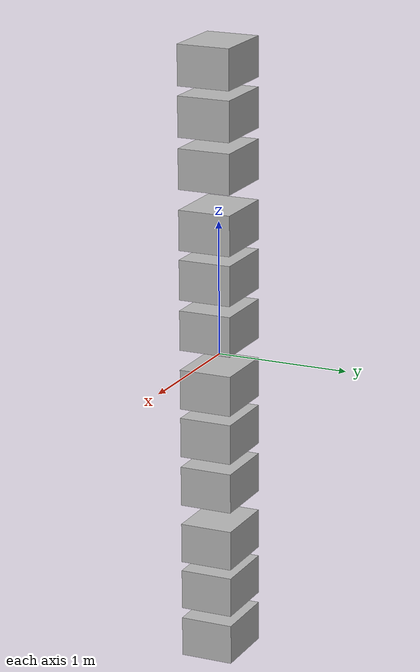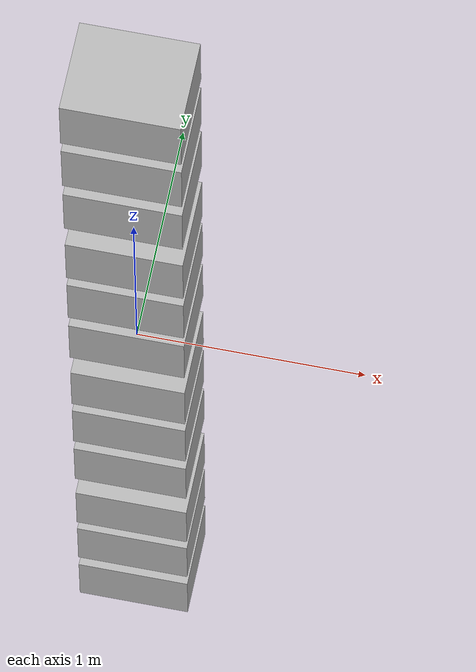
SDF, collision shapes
<?xml version='1.0'?>
<sdf version='1.6'>
  <model name='box1.0'>
    <model name='cardboard_box'>
      <pose frame=''>0 0 -2.17667 0 -0 0</pose>
      <link name='link'>
        <inertial>
          <mass>2</mass>
          <inertia>
            <ixx>0.0416667</ixx>
            <ixy>0</ixy>
            <ixz>0</ixz>
            <iyy>0.0566667</iyy>
            <iyz>0</iyz>
            <izz>0.0683333</izz>
          </inertia>
        </inertial>
        <collision name='collision'>
          <geometry>
            <box>
              <size>0.5 0.4 0.3</size>
            </box>
          </geometry>
          <surface>
            <friction>
              <ode>
                <mu>1</mu>
                <mu2>1</mu2>
              </ode>
              <torsional>
                <ode/>
              </torsional>
            </friction>
            <contact>
              <ode>
                <kp>1e+07</kp>
                <kd>1</kd>
                <min_depth>0.001</min_depth>
                <max_vel>0.1</max_vel>
              </ode>
            </contact>
            <bounce/>
          </surface>
          <max_contacts>10</max_contacts>
        </collision>
        <visual name='visual'>
          <pose frame=''>0 0 -0.15 0 -0 0</pose>
          <geometry>
            <mesh>
              <uri>model://cardboard_box/meshes/cardboard_box.dae</uri>
              <scale>1.25932 1.00745 0.755591</scale>
            </mesh>
          </geometry>
        </visual>
        <self_collide>0</self_collide>
        <kinematic>0</kinematic>
      </link>
    </model>
    <model name='cardboard_box_clone'>
      <pose frame=''>0 0 -1.79667 0 -0 0</pose>
      <link name='link'>
        <inertial>
          <mass>2</mass>
          <inertia>
            <ixx>0.0416667</ixx>
            <ixy>0</ixy>
            <ixz>0</ixz>
            <iyy>0.0566667</iyy>
            <iyz>0</iyz>
            <izz>0.0683333</izz>
          </inertia>
        </inertial>
        <collision name='collision'>
          <geometry>
            <box>
              <size>0.5 0.4 0.3</size>
            </box>
          </geometry>
          <surface>
            <friction>
              <ode>
                <mu>1</mu>
                <mu2>1</mu2>
              </ode>
              <torsional>
                <ode/>
              </torsional>
            </friction>
            <contact>
              <ode>
                <kp>1e+07</kp>
                <kd>1</kd>
                <min_depth>0.001</min_depth>
                <max_vel>0.1</max_vel>
              </ode>
            </contact>
            <bounce/>
          </surface>
          <max_contacts>10</max_contacts>
        </collision>
        <visual name='visual'>
          <pose frame=''>0 0 -0.15 0 -0 0</pose>
          <geometry>
            <mesh>
              <uri>model://cardboard_box/meshes/cardboard_box.dae</uri>
              <scale>1.25932 1.00745 0.755591</scale>
            </mesh>
          </geometry>
        </visual>
        <self_collide>0</self_collide>
        <kinematic>0</kinematic>
      </link>
    </model>
    <model name='cardboard_box_clone_clone'>
      <pose frame=''>0 0 -1.42667 0 -0 0</pose>
      <link name='link'>
        <inertial>
          <mass>2</mass>
          <inertia>
            <ixx>0.0416667</ixx>
            <ixy>0</ixy>
            <ixz>0</ixz>
            <iyy>0.0566667</iyy>
            <iyz>0</iyz>
            <izz>0.0683333</izz>
          </inertia>
        </inertial>
        <collision name='collision'>
          <geometry>
            <box>
              <size>0.5 0.4 0.3</size>
            </box>
          </geometry>
          <surface>
            <friction>
              <ode>
                <mu>1</mu>
                <mu2>1</mu2>
              </ode>
              <torsional>
                <ode/>
              </torsional>
            </friction>
            <contact>
              <ode>
                <kp>1e+07</kp>
                <kd>1</kd>
                <min_depth>0.001</min_depth>
                <max_vel>0.1</max_vel>
              </ode>
            </contact>
            <bounce/>
          </surface>
          <max_contacts>10</max_contacts>
        </collision>
        <visual name='visual'>
          <pose frame=''>0 0 -0.15 0 -0 0</pose>
          <geometry>
            <mesh>
              <uri>model://cardboard_box/meshes/cardboard_box.dae</uri>
              <scale>1.25932 1.00745 0.755591</scale>
            </mesh>
          </geometry>
        </visual>
        <self_collide>0</self_collide>
        <kinematic>0</kinematic>
      </link>
    </model>
    <model name='cardboard_box_clone_clone_0'>
      <pose frame=''>0 0 -0.976671 0 -0 0</pose>
      <link name='link'>
        <inertial>
          <mass>2</mass>
          <inertia>
            <ixx>0.0416667</ixx>
            <ixy>0</ixy>
            <ixz>0</ixz>
            <iyy>0.0566667</iyy>
            <iyz>0</iyz>
            <izz>0.0683333</izz>
          </inertia>
        </inertial>
        <collision name='collision'>
          <geometry>
            <box>
              <size>0.5 0.4 0.3</size>
            </box>
          </geometry>
          <surface>
            <friction>
              <ode>
                <mu>1</mu>
                <mu2>1</mu2>
              </ode>
              <torsional>
                <ode/>
              </torsional>
            </friction>
            <contact>
              <ode>
                <kp>1e+07</kp>
                <kd>1</kd>
                <min_depth>0.001</min_depth>
                <max_vel>0.1</max_vel>
              </ode>
            </contact>
            <bounce/>
          </surface>
          <max_contacts>10</max_contacts>
        </collision>
        <visual name='visual'>
          <pose frame=''>0 0 -0.15 0 -0 0</pose>
          <geometry>
            <mesh>
              <uri>model://cardboard_box/meshes/cardboard_box.dae</uri>
              <scale>1.25932 1.00745 0.755591</scale>
            </mesh>
          </geometry>
        </visual>
        <self_collide>0</self_collide>
        <kinematic>0</kinematic>
      </link>
    </model>
    <model name='cardboard_box_clone_clone_1'>
      <pose frame=''>0 0 -0.596671 0 -0 0</pose>
      <link name='link'>
        <inertial>
          <mass>2</mass>
          <inertia>
            <ixx>0.0416667</ixx>
            <ixy>0</ixy>
            <ixz>0</ixz>
            <iyy>0.0566667</iyy>
            <iyz>0</iyz>
            <izz>0.0683333</izz>
          </inertia>
        </inertial>
        <collision name='collision'>
          <geometry>
            <box>
              <size>0.5 0.4 0.3</size>
            </box>
          </geometry>
          <surface>
            <friction>
              <ode>
                <mu>1</mu>
                <mu2>1</mu2>
              </ode>
              <torsional>
                <ode/>
              </torsional>
            </friction>
            <contact>
              <ode>
                <kp>1e+07</kp>
                <kd>1</kd>
                <min_depth>0.001</min_depth>
                <max_vel>0.1</max_vel>
              </ode>
            </contact>
            <bounce/>
          </surface>
          <max_contacts>10</max_contacts>
        </collision>
        <visual name='visual'>
          <pose frame=''>0 0 -0.15 0 -0 0</pose>
          <geometry>
            <mesh>
              <uri>model://cardboard_box/meshes/cardboard_box.dae</uri>
              <scale>1.25932 1.00745 0.755591</scale>
            </mesh>
          </geometry>
        </visual>
        <self_collide>0</self_collide>
        <kinematic>0</kinematic>
      </link>
    </model>
    <model name='cardboard_box_clone_clone_2'>
      <pose frame=''>0 0 -0.226671 0 -0 0</pose>
      <link name='link'>
        <inertial>
          <mass>2</mass>
          <inertia>
            <ixx>0.0416667</ixx>
            <ixy>0</ixy>
            <ixz>0</ixz>
            <iyy>0.0566667</iyy>
            <iyz>0</iyz>
            <izz>0.0683333</izz>
          </inertia>
        </inertial>
        <collision name='collision'>
          <geometry>
            <box>
              <size>0.5 0.4 0.3</size>
            </box>
          </geometry>
          <surface>
            <friction>
              <ode>
                <mu>1</mu>
                <mu2>1</mu2>
              </ode>
              <torsional>
                <ode/>
              </torsional>
            </friction>
            <contact>
              <ode>
                <kp>1e+07</kp>
                <kd>1</kd>
                <min_depth>0.001</min_depth>
                <max_vel>0.1</max_vel>
              </ode>
            </contact>
            <bounce/>
          </surface>
          <max_contacts>10</max_contacts>
        </collision>
        <visual name='visual'>
          <pose frame=''>0 0 -0.15 0 -0 0</pose>
          <geometry>
            <mesh>
              <uri>model://cardboard_box/meshes/cardboard_box.dae</uri>
              <scale>1.25932 1.00745 0.755591</scale>
            </mesh>
          </geometry>
        </visual>
        <self_collide>0</self_collide>
        <kinematic>0</kinematic>
      </link>
    </model>
    <model name='cardboard_box_clone_clone_3'>
      <pose frame=''>0 0 0.22333 0 -0 0</pose>
      <link name='link'>
        <inertial>
          <mass>2</mass>
          <inertia>
            <ixx>0.0416667</ixx>
            <ixy>0</ixy>
            <ixz>0</ixz>
            <iyy>0.0566667</iyy>
            <iyz>0</iyz>
            <izz>0.0683333</izz>
          </inertia>
        </inertial>
        <collision name='collision'>
          <geometry>
            <box>
              <size>0.5 0.4 0.3</size>
            </box>
          </geometry>
          <surface>
            <friction>
              <ode>
                <mu>1</mu>
                <mu2>1</mu2>
              </ode>
              <torsional>
                <ode/>
              </torsional>
            </friction>
            <contact>
              <ode>
                <kp>1e+07</kp>
                <kd>1</kd>
                <min_depth>0.001</min_depth>
                <max_vel>0.1</max_vel>
              </ode>
            </contact>
            <bounce/>
          </surface>
          <max_contacts>10</max_contacts>
        </collision>
        <visual name='visual'>
          <pose frame=''>0 0 -0.15 0 -0 0</pose>
          <geometry>
            <mesh>
              <uri>model://cardboard_box/meshes/cardboard_box.dae</uri>
              <scale>1.25932 1.00745 0.755591</scale>
            </mesh>
          </geometry>
        </visual>
        <self_collide>0</self_collide>
        <kinematic>0</kinematic>
      </link>
    </model>
    <model name='cardboard_box_clone_clone_4'>
      <pose frame=''>0 0 0.60333 0 -0 0</pose>
      <link name='link'>
        <inertial>
          <mass>2</mass>
          <inertia>
            <ixx>0.0416667</ixx>
            <ixy>0</ixy>
            <ixz>0</ixz>
            <iyy>0.0566667</iyy>
            <iyz>0</iyz>
            <izz>0.0683333</izz>
          </inertia>
        </inertial>
        <collision name='collision'>
          <geometry>
            <box>
              <size>0.5 0.4 0.3</size>
            </box>
          </geometry>
          <surface>
            <friction>
              <ode>
                <mu>1</mu>
                <mu2>1</mu2>
              </ode>
              <torsional>
                <ode/>
              </torsional>
            </friction>
            <contact>
              <ode>
                <kp>1e+07</kp>
                <kd>1</kd>
                <min_depth>0.001</min_depth>
                <max_vel>0.1</max_vel>
              </ode>
            </contact>
            <bounce/>
          </surface>
          <max_contacts>10</max_contacts>
        </collision>
        <visual name='visual'>
          <pose frame=''>0 0 -0.15 0 -0 0</pose>
          <geometry>
            <mesh>
              <uri>model://cardboard_box/meshes/cardboard_box.dae</uri>
              <scale>1.25932 1.00745 0.755591</scale>
            </mesh>
          </geometry>
        </visual>
        <self_collide>0</self_collide>
        <kinematic>0</kinematic>
      </link>
    </model>
    <model name='cardboard_box_clone_clone_5'>
      <pose frame=''>0 0 0.97333 0 -0 0</pose>
      <link name='link'>
        <inertial>
          <mass>2</mass>
          <inertia>
            <ixx>0.0416667</ixx>
            <ixy>0</ixy>
            <ixz>0</ixz>
            <iyy>0.0566667</iyy>
            <iyz>0</iyz>
            <izz>0.0683333</izz>
          </inertia>
        </inertial>
        <collision name='collision'>
          <geometry>
            <box>
              <size>0.5 0.4 0.3</size>
            </box>
          </geometry>
          <surface>
            <friction>
              <ode>
                <mu>1</mu>
                <mu2>1</mu2>
              </ode>
              <torsional>
                <ode/>
              </torsional>
            </friction>
            <contact>
              <ode>
                <kp>1e+07</kp>
                <kd>1</kd>
                <min_depth>0.001</min_depth>
                <max_vel>0.1</max_vel>
              </ode>
            </contact>
            <bounce/>
          </surface>
          <max_contacts>10</max_contacts>
        </collision>
        <visual name='visual'>
          <pose frame=''>0 0 -0.15 0 -0 0</pose>
          <geometry>
            <mesh>
              <uri>model://cardboard_box/meshes/cardboard_box.dae</uri>
              <scale>1.25932 1.00745 0.755591</scale>
            </mesh>
          </geometry>
        </visual>
        <self_collide>0</self_collide>
        <kinematic>0</kinematic>
      </link>
    </model>
    <model name='cardboard_box_clone_clone_6'>
      <pose frame=''>0 0 1.42333 0 -0 0</pose>
      <link name='link'>
        <inertial>
          <mass>2</mass>
          <inertia>
            <ixx>0.0416667</ixx>
            <ixy>0</ixy>
            <ixz>0</ixz>
            <iyy>0.0566667</iyy>
            <iyz>0</iyz>
            <izz>0.0683333</izz>
          </inertia>
        </inertial>
        <collision name='collision'>
          <geometry>
            <box>
              <size>0.5 0.4 0.3</size>
            </box>
          </geometry>
          <surface>
            <friction>
              <ode>
                <mu>1</mu>
                <mu2>1</mu2>
              </ode>
              <torsional>
                <ode/>
              </torsional>
            </friction>
            <contact>
              <ode>
                <kp>1e+07</kp>
                <kd>1</kd>
                <min_depth>0.001</min_depth>
                <max_vel>0.1</max_vel>
              </ode>
            </contact>
            <bounce/>
          </surface>
          <max_contacts>10</max_contacts>
        </collision>
        <visual name='visual'>
          <pose frame=''>0 0 -0.15 0 -0 0</pose>
          <geometry>
            <mesh>
              <uri>model://cardboard_box/meshes/cardboard_box.dae</uri>
              <scale>1.25932 1.00745 0.755591</scale>
            </mesh>
          </geometry>
        </visual>
        <self_collide>0</self_collide>
        <kinematic>0</kinematic>
      </link>
    </model>
    <model name='cardboard_box_clone_clone_7'>
      <pose frame=''>0 0 1.80333 0 -0 0</pose>
      <link name='link'>
        <inertial>
          <mass>2</mass>
          <inertia>
            <ixx>0.0416667</ixx>
            <ixy>0</ixy>
            <ixz>0</ixz>
            <iyy>0.0566667</iyy>
            <iyz>0</iyz>
            <izz>0.0683333</izz>
          </inertia>
        </inertial>
        <collision name='collision'>
          <geometry>
            <box>
              <size>0.5 0.4 0.3</size>
            </box>
          </geometry>
          <surface>
            <friction>
              <ode>
                <mu>1</mu>
                <mu2>1</mu2>
              </ode>
              <torsional>
                <ode/>
              </torsional>
            </friction>
            <contact>
              <ode>
                <kp>1e+07</kp>
                <kd>1</kd>
                <min_depth>0.001</min_depth>
                <max_vel>0.1</max_vel>
              </ode>
            </contact>
            <bounce/>
          </surface>
          <max_contacts>10</max_contacts>
        </collision>
        <visual name='visual'>
          <pose frame=''>0 0 -0.15 0 -0 0</pose>
          <geometry>
            <mesh>
              <uri>model://cardboard_box/meshes/cardboard_box.dae</uri>
              <scale>1.25932 1.00745 0.755591</scale>
            </mesh>
          </geometry>
        </visual>
        <self_collide>0</self_collide>
        <kinematic>0</kinematic>
      </link>
    </model>
    <model name='cardboard_box_clone_clone_8'>
      <pose frame=''>0 0 2.17333 0 -0 0</pose>
      <link name='link'>
        <inertial>
          <mass>2</mass>
          <inertia>
            <ixx>0.0416667</ixx>
            <ixy>0</ixy>
            <ixz>0</ixz>
            <iyy>0.0566667</iyy>
            <iyz>0</iyz>
            <izz>0.0683333</izz>
          </inertia>
        </inertial>
        <collision name='collision'>
          <geometry>
            <box>
              <size>0.5 0.4 0.3</size>
            </box>
          </geometry>
          <surface>
            <friction>
              <ode>
                <mu>1</mu>
                <mu2>1</mu2>
              </ode>
              <torsional>
                <ode/>
              </torsional>
            </friction>
            <contact>
              <ode>
                <kp>1e+07</kp>
                <kd>1</kd>
                <min_depth>0.001</min_depth>
                <max_vel>0.1</max_vel>
              </ode>
            </contact>
            <bounce/>
          </surface>
          <max_contacts>10</max_contacts>
        </collision>
        <visual name='visual'>
          <pose frame=''>0 0 -0.15 0 -0 0</pose>
          <geometry>
            <mesh>
              <uri>model://cardboard_box/meshes/cardboard_box.dae</uri>
              <scale>1.25932 1.00745 0.755591</scale>
            </mesh>
          </geometry>
        </visual>
        <self_collide>0</self_collide>
        <kinematic>0</kinematic>
      </link>
    </model>
    <joint name='link_JOINT_0' type='fixed'>
      <parent>cardboard_box::link</parent>
      <child>cardboard_box_clone::link</child>
      <pose frame=''>0 0 0 0 -0 0</pose>
      <physics>
        <ode>
          <limit>
            <cfm>0</cfm>
            <erp>0.2</erp>
          </limit>
          <suspension>
            <cfm>0</cfm>
            <erp>0.2</erp>
          </suspension>
        </ode>
      </physics>
    </joint>
    <joint name='link_JOINT_10' type='fixed'>
      <parent>cardboard_box::link</parent>
      <child>cardboard_box_clone_clone_8::link</child>
      <pose frame=''>0 0 0 0 -0 0</pose>
      <physics>
        <ode>
          <limit>
            <cfm>0</cfm>
            <erp>0.2</erp>
          </limit>
          <suspension>
            <cfm>0</cfm>
            <erp>0.2</erp>
          </suspension>
        </ode>
      </physics>
    </joint>
    <joint name='link_JOINT_1' type='fixed'>
      <parent>cardboard_box::link</parent>
      <child>cardboard_box_clone_clone::link</child>
      <pose frame=''>0 0 0 0 -0 0</pose>
      <physics>
        <ode>
          <limit>
            <cfm>0</cfm>
            <erp>0.2</erp>
          </limit>
          <suspension>
            <cfm>0</cfm>
            <erp>0.2</erp>
          </suspension>
        </ode>
      </physics>
    </joint>
    <joint name='link_JOINT_2' type='fixed'>
      <parent>cardboard_box::link</parent>
      <child>cardboard_box_clone_clone_0::link</child>
      <pose frame=''>0 0 0 0 -0 0</pose>
      <physics>
        <ode>
          <limit>
            <cfm>0</cfm>
            <erp>0.2</erp>
          </limit>
          <suspension>
            <cfm>0</cfm>
            <erp>0.2</erp>
          </suspension>
        </ode>
      </physics>
    </joint>
    <joint name='link_JOINT_3' type='revolute'>
      <parent>cardboard_box::link</parent>
      <child>cardboard_box_clone_clone_1::link</child>
      <pose frame=''>0 0 0 0 -0 0</pose>
      <axis>
        <xyz>1 0 0</xyz>
        <use_parent_model_frame>0</use_parent_model_frame>
        <limit>
          <lower>-1.79769e+308</lower>
          <upper>1.79769e+308</upper>
          <effort>-1</effort>
          <velocity>-1</velocity>
        </limit>
        <dynamics>
          <spring_reference>0</spring_reference>
          <spring_stiffness>0</spring_stiffness>
          <damping>0</damping>
          <friction>0</friction>
        </dynamics>
      </axis>
      <physics>
        <ode>
          <limit>
            <cfm>0</cfm>
            <erp>0.2</erp>
          </limit>
          <suspension>
            <cfm>0</cfm>
            <erp>0.2</erp>
          </suspension>
        </ode>
      </physics>
    </joint>
    <joint name='link_JOINT_4' type='fixed'>
      <parent>cardboard_box::link</parent>
      <child>cardboard_box_clone_clone_2::link</child>
      <pose frame=''>0 0 0 0 -0 0</pose>
      <physics>
        <ode>
          <limit>
            <cfm>0</cfm>
            <erp>0.2</erp>
          </limit>
          <suspension>
            <cfm>0</cfm>
            <erp>0.2</erp>
          </suspension>
        </ode>
      </physics>
    </joint>
    <joint name='link_JOINT_5' type='revolute'>
      <parent>cardboard_box::link</parent>
      <child>cardboard_box_clone_clone_3::link</child>
      <pose frame=''>0 0 0 0 -0 0</pose>
      <axis>
        <xyz>1 0 0</xyz>
        <use_parent_model_frame>0</use_parent_model_frame>
        <limit>
          <lower>-1.79769e+308</lower>
          <upper>1.79769e+308</upper>
          <effort>-1</effort>
          <velocity>-1</velocity>
        </limit>
        <dynamics>
          <spring_reference>0</spring_reference>
          <spring_stiffness>0</spring_stiffness>
          <damping>0</damping>
          <friction>0</friction>
        </dynamics>
      </axis>
      <physics>
        <ode>
          <limit>
            <cfm>0</cfm>
            <erp>0.2</erp>
          </limit>
          <suspension>
            <cfm>0</cfm>
            <erp>0.2</erp>
          </suspension>
        </ode>
      </physics>
    </joint>
    <joint name='link_JOINT_6' type='fixed'>
      <parent>cardboard_box::link</parent>
      <child>cardboard_box_clone_clone_4::link</child>
      <pose frame=''>0 0 0 0 -0 0</pose>
      <physics>
        <ode>
          <limit>
            <cfm>0</cfm>
            <erp>0.2</erp>
          </limit>
          <suspension>
            <cfm>0</cfm>
            <erp>0.2</erp>
          </suspension>
        </ode>
      </physics>
    </joint>
    <joint name='link_JOINT_7' type='fixed'>
      <parent>cardboard_box::link</parent>
      <child>cardboard_box_clone_clone_5::link</child>
      <pose frame=''>0 0 0 0 -0 0</pose>
      <physics>
        <ode>
          <limit>
            <cfm>0</cfm>
            <erp>0.2</erp>
          </limit>
          <suspension>
            <cfm>0</cfm>
            <erp>0.2</erp>
          </suspension>
        </ode>
      </physics>
    </joint>
    <joint name='link_JOINT_8' type='fixed'>
      <parent>cardboard_box::link</parent>
      <child>cardboard_box_clone_clone_6::link</child>
      <pose frame=''>0 0 0 0 -0 0</pose>
      <physics>
        <ode>
          <limit>
            <cfm>0</cfm>
            <erp>0.2</erp>
          </limit>
          <suspension>
            <cfm>0</cfm>
            <erp>0.2</erp>
          </suspension>
        </ode>
      </physics>
    </joint>
    <joint name='link_JOINT_9' type='fixed'>
      <parent>cardboard_box::link</parent>
      <child>cardboard_box_clone_clone_7::link</child>
      <pose frame=''>0 0 0 0 -0 0</pose>
      <physics>
        <ode>
          <limit>
            <cfm>0</cfm>
            <erp>0.2</erp>
          </limit>
          <suspension>
            <cfm>0</cfm>
            <erp>0.2</erp>
          </suspension>
        </ode>
      </physics>
    </joint>
    <static>1</static>
    <allow_auto_disable>0</allow_auto_disable>
  </model>
</sdf>
